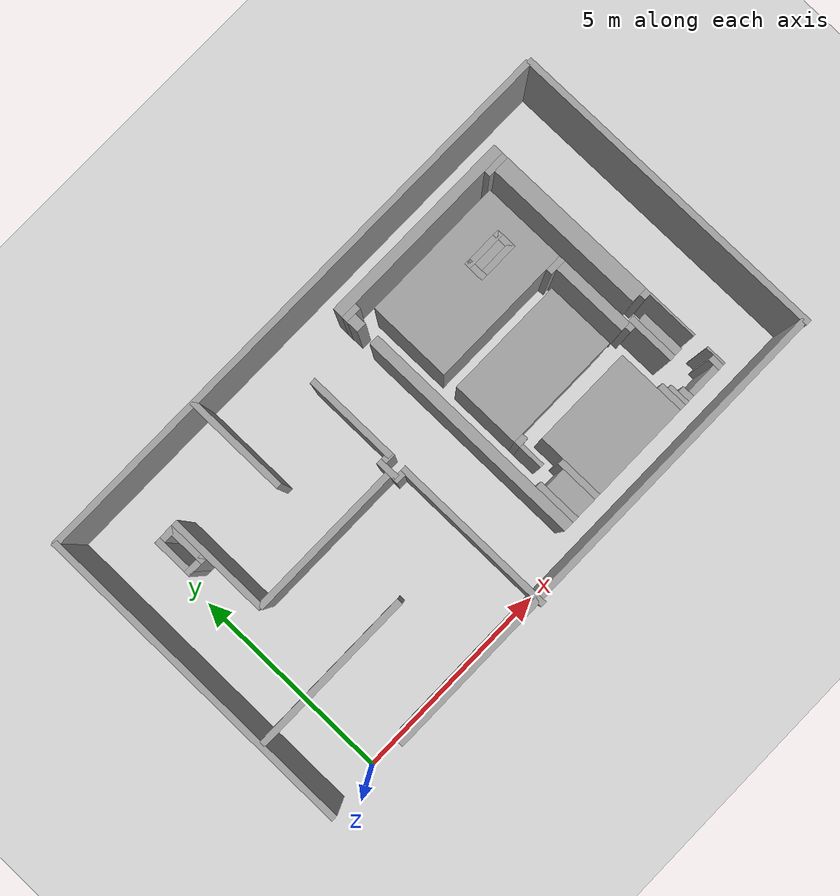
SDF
<sdf version="1.7">
 <world name="default">
  <light name="sun" type="directional">
   <pose>0 0 10 0 -0 0</pose>
   <diffuse>0.8 0.8 0.8 1</diffuse>
   <specular>0.2 0.2 0.2 1</specular>
   <attenuation>
    <range>1000</range>
    <constant>0.9</constant>
    <linear>0.01</linear>
    <quadratic>0.001</quadratic>
   </attenuation>
   <direction>-0.5 0.1 -0.9</direction>
   <spot><inner_angle>0</inner_angle><outer_angle>0</outer_angle><falloff>0</falloff></spot>
  </light>
  <model name="ground_plane">
   <static>1</static>
   <link name="link">
    <collision name="collision">
     <geometry><plane><normal>0 0 1</normal><size>100 100</size></plane></geometry>
     <surface>
      <contact><collide_bitmask>65535</collide_bitmask></contact>
      <friction><ode><mu>100</mu><mu2>50</mu2></ode></friction>
     </surface>
    </collision>
    <visual name="visual">
     <cast_shadows>0</cast_shadows>
     <geometry><plane><normal>0 0 1</normal><size>100 100</size></plane></geometry>
     <material>
      <script><uri>file://media/materials/scripts/gazebo.material</uri><name>Gazebo/Grey</name></script>
     </material>
    </visual>
   </link>
  </model>
  <gravity>0 0 -9.8</gravity>
  <magnetic_field>6e-06 2.3e-05 -4.2e-05</magnetic_field>
  <atmosphere type="adiabatic"/>
  <physics type="ode">
   <max_step_size>0.001</max_step_size>
   <real_time_factor>1</real_time_factor>
   <real_time_update_rate>1000</real_time_update_rate>
  </physics>
  <scene><ambient>0.4 0.4 0.4 1</ambient><background>0.7 0.7 0.7 1</background><shadows>1</shadows></scene>
  <spherical_coordinates>
   <surface_model>EARTH_WGS84</surface_model>
   <latitude_deg>0</latitude_deg>
   <longitude_deg>0</longitude_deg>
   <elevation>0</elevation>
   <heading_deg>0</heading_deg>
  </spherical_coordinates>
  <model name="myroom_long_start">
   <pose>6.00346 4.01651 0 0 -0 0</pose>
   <link name="Wall_0">
    <collision name="Wall_0_Collision">
     <geometry><box><size>12 0.15 2.5</size></box></geometry>
     <pose>0 0 1.25 0 -0 0</pose>
    </collision>
    <visual name="Wall_0_Visual">
     <pose>0 0 1.25 0 -0 0</pose>
     <geometry><box><size>12 0.15 2.5</size></box></geometry>
     <material>
      <script><uri>file://media/materials/scripts/gazebo.material</uri><name>Gazebo/Grey</name></script>
      <ambient>1 1 1 1</ambient>
     </material>
     <meta><layer>0</layer></meta>
    </visual>
    <pose>0.977061 -3.98139 0 0 -0 0</pose>
   </link>
   <link name="Wall_10">
    <collision name="Wall_10_Collision">
     <geometry><box><size>4 0.15 2.5</size></box></geometry>
     <pose>0 0 1.25 0 -0 0</pose>
    </collision>
    <visual name="Wall_10_Visual">
     <pose>0 0 1.25 0 -0 0</pose>
     <geometry><box><size>4 0.15 2.5</size></box></geometry>
     <material>
      <script><uri>file://media/materials/scripts/gazebo.material</uri><name>Gazebo/Grey</name></script>
      <ambient>1 1 1 1</ambient>
     </material>
     <meta><layer>0</layer></meta>
    </visual>
    <pose>-4.95933 -1.98457 0 0 -0 0</pose>
   </link>
   <link name="Wall_12">
    <collision name="Wall_12_Collision">
     <geometry><box><size>4 0.15 2.5</size></box></geometry>
     <pose>0 0 1.25 0 -0 0</pose>
    </collision>
    <visual name="Wall_12_Visual">
     <pose>0 0 1.25 0 -0 0</pose>
     <geometry><box><size>4 0.15 2.5</size></box></geometry>
     <material>
      <script><uri>file://media/materials/scripts/gazebo.material</uri><name>Gazebo/Grey</name></script>
      <ambient>1 1 1 1</ambient>
     </material>
     <meta><layer>0</layer></meta>
    </visual>
    <pose>-0.973865 -2.13486 0 0 -0 -1.5708</pose>
   </link>
   <link name="Wall_16">
    <collision name="Wall_16_Collision">
     <geometry><box><size>2.5 0.15 2.5</size></box></geometry>
     <pose>0 0 1.25 0 -0 0</pose>
    </collision>
    <visual name="Wall_16_Visual">
     <pose>0 0 1.25 0 -0 0</pose>
     <geometry><box><size>2.5 0.15 2.5</size></box></geometry>
     <material>
      <script><uri>file://media/materials/scripts/gazebo.material</uri><name>Gazebo/Grey</name></script>
      <ambient>1 1 1 1</ambient>
     </material>
     <meta><layer>0</layer></meta>
    </visual>
    <pose>-5.00955 1.19594 0 0 -0 -1.5708</pose>
   </link>
   <link name="Wall_2">
    <collision name="Wall_2_Collision">
     <geometry><box><size>8 0.15 2.5</size></box></geometry>
     <pose>0 0 1.25 0 -0 0</pose>
    </collision>
    <visual name="Wall_2_Visual">
     <pose>0 0 1.25 0 -0 0</pose>
     <geometry><box><size>8 0.15 2.5</size></box></geometry>
     <material>
      <script><uri>file://media/materials/scripts/gazebo.material</uri><name>Gazebo/Grey</name></script>
      <ambient>1 1 1 1</ambient>
     </material>
     <meta><layer>0</layer></meta>
    </visual>
    <pose>-6.99952 -0.062096 0 0 -0 -1.5708</pose>
   </link>
   <link name="Wall_20">
    <collision name="Wall_20_Collision">
     <geometry><box><size>2.5 0.15 2.5</size></box></geometry>
     <pose>0 0 1.25 0 -0 0</pose>
    </collision>
    <visual name="Wall_20_Visual">
     <pose>0 0 1.25 0 -0 0</pose>
     <geometry><box><size>2.5 0.15 2.5</size></box></geometry>
     <material>
      <script><uri>file://media/materials/scripts/gazebo.material</uri><name>Gazebo/Grey</name></script>
      <ambient>1 1 1 1</ambient>
     </material>
     <meta><layer>0</layer></meta>
    </visual>
    <pose>-2.98955 2.67594 0 0 -0 -1.5708</pose>
   </link>
   <link name="Wall_24">
    <collision name="Wall_24_Collision">
     <geometry><box><size>3.75 0.15 2.5</size></box></geometry>
     <pose>0 0 1.25 0 -0 0</pose>
    </collision>
    <visual name="Wall_24_Visual">
     <pose>0 0 1.25 0 -0 0</pose>
     <geometry><box><size>3.75 0.15 2.5</size></box></geometry>
     <material>
      <script><uri>file://media/materials/scripts/gazebo.material</uri><name>Gazebo/Grey</name></script>
      <ambient>1 1 1 1</ambient>
     </material>
     <meta><layer>0</layer></meta>
    </visual>
    <pose>-3.15343 -0.018496 0 0 -0 0</pose>
   </link>
   <link name="Wall_28">
    <collision name="Wall_28_Collision">
     <geometry><box><size>2.25 0.15 2.5</size></box></geometry>
     <pose>0 0 1.25 0 -0 0</pose>
    </collision>
    <visual name="Wall_28_Visual">
     <pose>0 0 1.25 0 -0 0</pose>
     <geometry><box><size>2.25 0.15 2.5</size></box></geometry>
     <material>
      <script><uri>file://media/materials/scripts/gazebo.material</uri><name>Gazebo/Grey</name></script>
      <ambient>1 1 1 1</ambient>
     </material>
     <meta><layer>0</layer></meta>
    </visual>
    <pose>-0.964656 1.33168 0 0 -0 -1.5708</pose>
   </link>
   <link name="Wall_32">
    <collision name="Wall_32_Collision">
     <geometry><box><size>0.25 0.15 2.5</size></box></geometry>
     <pose>0 0 1.25 0 -0 0</pose>
    </collision>
    <visual name="Wall_32_Visual">
     <pose>0 0 1.25 0 -0 0</pose>
     <geometry><box><size>0.25 0.15 2.5</size></box></geometry>
     <material>
      <script><uri>file://media/materials/scripts/gazebo.material</uri><name>Gazebo/Grey</name></script>
      <ambient>1 1 1 1</ambient>
     </material>
     <meta><layer>0</layer></meta>
    </visual>
    <pose>-1.15449 -0.210647 0 0 -0 0</pose>
   </link>
   <link name="Wall_34">
    <collision name="Wall_34_Collision">
     <geometry><box><size>0.5 0.15 2.5</size></box></geometry>
     <pose>0 0 1.25 0 -0 0</pose>
    </collision>
    <visual name="Wall_34_Visual">
     <pose>0 0 1.25 0 -0 0</pose>
     <geometry><box><size>0.5 0.15 2.5</size></box></geometry>
     <material>
      <script><uri>file://media/materials/scripts/gazebo.material</uri><name>Gazebo/Grey</name></script>
      <ambient>1 1 1 1</ambient>
     </material>
     <meta><layer>0</layer></meta>
    </visual>
    <pose>-1.20471 0.066247 0 0 -0 -1.5708</pose>
   </link>
   <link name="Wall_36">
    <collision name="Wall_36_Collision">
     <geometry><box><size>0.25 0.15 2.5</size></box></geometry>
     <pose>0 0 1.25 0 -0 0</pose>
    </collision>
    <visual name="Wall_36_Visual">
     <pose>0 0 1.25 0 -0 0</pose>
     <geometry><box><size>0.25 0.15 2.5</size></box></geometry>
     <material>
      <script><uri>file://media/materials/scripts/gazebo.material</uri><name>Gazebo/Grey</name></script>
      <ambient>1 1 1 1</ambient>
     </material>
     <meta><layer>0</layer></meta>
    </visual>
    <pose>-1.01476 0.240944 0 0 -0 0</pose>
   </link>
   <link name="Wall_4">
    <collision name="Wall_4_Collision">
     <geometry><box><size>14 0.15 2.5</size></box></geometry>
     <pose>0 0 1.25 0 -0 0</pose>
    </collision>
    <visual name="Wall_4_Visual">
     <pose>0 0 1.25 0 -0 0</pose>
     <geometry><box><size>14 0.15 2.5</size></box></geometry>
     <material>
      <script><uri>file://media/materials/scripts/gazebo.material</uri><name>Gazebo/Grey</name></script>
      <ambient>1 1 1 1</ambient>
     </material>
     <meta><layer>0</layer></meta>
    </visual>
    <pose>-0.026045 3.88302 0 0 -0 3.14159</pose>
   </link>
   <link name="Wall_6">
    <collision name="Wall_6_Collision">
     <geometry><box><size>8 0.15 2.5</size></box></geometry>
     <pose>0 0 1.25 0 -0 0</pose>
    </collision>
    <visual name="Wall_6_Visual">
     <pose>0 0 1.25 0 -0 0</pose>
     <geometry><box><size>8 0.15 2.5</size></box></geometry>
     <material>
      <script><uri>file://media/materials/scripts/gazebo.material</uri><name>Gazebo/Grey</name></script>
      <ambient>1 1 1 1</ambient>
     </material>
     <meta><layer>0</layer></meta>
    </visual>
    <pose>6.99952 -0.08221 0 0 -0 -1.5708</pose>
   </link>
   <static>1</static>
  </model>
  <model name="half_wall">
   <pose>0.67196 6.91648 0 0 -0 0</pose>
   <link name="Wall_0">
    <collision name="Wall_0_Collision">
     <geometry><box><size>1 0.15 2.5</size></box></geometry>
     <pose>0 0 1.25 0 -0 0</pose>
    </collision>
    <visual name="Wall_0_Visual">
     <pose>0 0 1.25 0 -0 0</pose>
     <geometry><box><size>1 0.15 2.5</size></box></geometry>
     <material>
      <script><uri>file://media/materials/scripts/gazebo.material</uri><name>Gazebo/Grey</name></script>
      <ambient>1 1 1 1</ambient>
     </material>
     <meta><layer>0</layer></meta>
    </visual>
    <pose>-0.175 -0.9541 0 0 -0 1.5708</pose>
   </link>
   <link name="Wall_1">
    <collision name="Wall_1_Collision">
     <geometry><box><size>0.5 0.15 2.5</size></box></geometry>
     <pose>0 0 1.25 0 -0 0</pose>
    </collision>
    <visual name="Wall_1_Visual">
     <pose>0 0 1.25 0 -0 0</pose>
     <geometry><box><size>0.5 0.15 2.5</size></box></geometry>
     <material>
      <script><uri>file://media/materials/scripts/gazebo.material</uri><name>Gazebo/Grey</name></script>
      <ambient>1 1 1 1</ambient>
     </material>
     <meta><layer>0</layer></meta>
    </visual>
    <pose>0 -0.5291 0 0 -0 0</pose>
   </link>
   <link name="Wall_2">
    <collision name="Wall_2_Collision">
     <geometry><box><size>1 0.15 2.5</size></box></geometry>
     <pose>0 0 1.25 0 -0 0</pose>
    </collision>
    <visual name="Wall_2_Visual">
     <pose>0 0 1.25 0 -0 0</pose>
     <geometry><box><size>1 0.15 2.5</size></box></geometry>
     <material>
      <script><uri>file://media/materials/scripts/gazebo.material</uri><name>Gazebo/Grey</name></script>
      <ambient>1 1 1 1</ambient>
     </material>
     <meta><layer>0</layer></meta>
    </visual>
    <pose>0.175 -0.9541 0 0 -0 -1.5708</pose>
   </link>
   <link name="Wall_3">
    <collision name="Wall_3_Collision">
     <geometry><box><size>0.5 0.15 2.5</size></box></geometry>
     <pose>0 0 1.25 0 -0 0</pose>
    </collision>
    <visual name="Wall_3_Visual">
     <pose>0 0 1.25 0 -0 0</pose>
     <geometry><box><size>0.5 0.15 2.5</size></box></geometry>
     <material>
      <script><uri>file://media/materials/scripts/gazebo.material</uri><name>Gazebo/Grey</name></script>
      <ambient>1 1 1 1</ambient>
     </material>
     <meta><layer>0</layer></meta>
    </visual>
    <pose>0 -1.3791 0 0 -0 3.14159</pose>
   </link>
   <static>1</static>
  </model>
  <model name="half_wall_0">
   <pose>8.50621 5.64751 0 0 -0 1.57113</pose>
   <link name="Wall_0">
    <collision name="Wall_0_Collision">
     <geometry><box><size>1 0.15 2.5</size></box></geometry>
     <pose>0 0 1.25 0 -0 0</pose>
    </collision>
    <visual name="Wall_0_Visual">
     <pose>0 0 1.25 0 -0 0</pose>
     <geometry><box><size>1 0.15 2.5</size></box></geometry>
     <material>
      <script><uri>file://media/materials/scripts/gazebo.material</uri><name>Gazebo/Grey</name></script>
      <ambient>1 1 1 1</ambient>
     </material>
     <meta><layer>0</layer></meta>
    </visual>
    <pose>-0.175 -0.9541 0 0 -0 1.5708</pose>
   </link>
   <link name="Wall_1">
    <collision name="Wall_1_Collision">
     <geometry><box><size>0.5 0.15 2.5</size></box></geometry>
     <pose>0 0 1.25 0 -0 0</pose>
    </collision>
    <visual name="Wall_1_Visual">
     <pose>0 0 1.25 0 -0 0</pose>
     <geometry><box><size>0.5 0.15 2.5</size></box></geometry>
     <material>
      <script><uri>file://media/materials/scripts/gazebo.material</uri><name>Gazebo/Grey</name></script>
      <ambient>1 1 1 1</ambient>
     </material>
     <meta><layer>0</layer></meta>
    </visual>
    <pose>0 -0.5291 0 0 -0 0</pose>
   </link>
   <link name="Wall_2">
    <collision name="Wall_2_Collision">
     <geometry><box><size>1 0.15 2.5</size></box></geometry>
     <pose>0 0 1.25 0 -0 0</pose>
    </collision>
    <visual name="Wall_2_Visual">
     <pose>0 0 1.25 0 -0 0</pose>
     <geometry><box><size>1 0.15 2.5</size></box></geometry>
     <material>
      <script><uri>file://media/materials/scripts/gazebo.material</uri><name>Gazebo/Grey</name></script>
      <ambient>1 1 1 1</ambient>
     </material>
     <meta><layer>0</layer></meta>
    </visual>
    <pose>0.175 -0.9541 0 0 -0 -1.5708</pose>
   </link>
   <link name="Wall_3">
    <collision name="Wall_3_Collision">
     <geometry><box><size>0.5 0.15 2.5</size></box></geometry>
     <pose>0 0 1.25 0 -0 0</pose>
    </collision>
    <visual name="Wall_3_Visual">
     <pose>0 0 1.25 0 -0 0</pose>
     <geometry><box><size>0.5 0.15 2.5</size></box></geometry>
     <material>
      <script><uri>file://media/materials/scripts/gazebo.material</uri><name>Gazebo/Grey</name></script>
      <ambient>1 1 1 1</ambient>
     </material>
     <meta><layer>0</layer></meta>
    </visual>
    <pose>0 -1.3791 0 0 -0 3.14159</pose>
   </link>
   <static>1</static>
  </model>
  <model name="inroom_branch_wall_0">
   <static>1</static>
   <pose>8.800 7.075 1.250 0 0 0</pose>
   <link name="link">
    <collision name="collision"><geometry><box><size>4.800 0.250 2.50</size></box></geometry></collision>
    <visual name="visual">
     <geometry><box><size>4.800 0.250 2.50</size></box></geometry>
     <material>
      <script><uri>file://media/materials/scripts/gazebo.material</uri><name>Gazebo/Grey</name></script>
     </material>
    </visual>
   </link>
  </model>
  <model name="inroom_branch_wall_1">
   <static>1</static>
   <pose>6.600 6.875 1.250 0 0 0</pose>
   <link name="link">
    <collision name="collision"><geometry><box><size>0.400 0.150 2.50</size></box></geometry></collision>
    <visual name="visual">
     <geometry><box><size>0.400 0.150 2.50</size></box></geometry>
     <material>
      <script><uri>file://media/materials/scripts/gazebo.material</uri><name>Gazebo/Grey</name></script>
     </material>
    </visual>
   </link>
  </model>
  <model name="inroom_branch_wall_2">
   <static>1</static>
   <pose>10.925 6.875 1.250 0 0 0</pose>
   <link name="link">
    <collision name="collision"><geometry><box><size>0.550 0.150 2.50</size></box></geometry></collision>
    <visual name="visual">
     <geometry><box><size>0.550 0.150 2.50</size></box></geometry>
     <material>
      <script><uri>file://media/materials/scripts/gazebo.material</uri><name>Gazebo/Grey</name></script>
     </material>
    </visual>
   </link>
  </model>
  <model name="inroom_branch_wall_3">
   <static>1</static>
   <pose>6.525 6.650 1.250 0 0 0</pose>
   <link name="link">
    <collision name="collision"><geometry><box><size>0.250 0.300 2.50</size></box></geometry></collision>
    <visual name="visual">
     <geometry><box><size>0.250 0.300 2.50</size></box></geometry>
     <material>
      <script><uri>file://media/materials/scripts/gazebo.material</uri><name>Gazebo/Grey</name></script>
     </material>
    </visual>
   </link>
  </model>
  <model name="inroom_branch_wall_4">
   <static>1</static>
   <pose>11.000 4.825 1.250 0 0 0</pose>
   <link name="link">
    <collision name="collision"><geometry><box><size>0.400 3.950 2.50</size></box></geometry></collision>
    <visual name="visual">
     <geometry><box><size>0.400 3.950 2.50</size></box></geometry>
     <material>
      <script><uri>file://media/materials/scripts/gazebo.material</uri><name>Gazebo/Grey</name></script>
     </material>
    </visual>
   </link>
  </model>
  <model name="inroom_branch_wall_5">
   <static>1</static>
   <pose>8.725 5.600 1.250 0 0 0</pose>
   <link name="link">
    <collision name="collision"><geometry><box><size>3.450 2.000 2.50</size></box></geometry></collision>
    <visual name="visual">
     <geometry><box><size>3.450 2.000 2.50</size></box></geometry>
     <material>
      <script><uri>file://media/materials/scripts/gazebo.material</uri><name>Gazebo/Grey</name></script>
     </material>
    </visual>
   </link>
  </model>
  <model name="inroom_branch_wall_6">
   <static>1</static>
   <pose>6.525 3.375 1.250 0 0 0</pose>
   <link name="link">
    <collision name="collision"><geometry><box><size>0.250 5.550 2.50</size></box></geometry></collision>
    <visual name="visual">
     <geometry><box><size>0.250 5.550 2.50</size></box></geometry>
     <material>
      <script><uri>file://media/materials/scripts/gazebo.material</uri><name>Gazebo/Grey</name></script>
     </material>
    </visual>
   </link>
  </model>
  <model name="inroom_branch_wall_7">
   <static>1</static>
   <pose>10.250 4.525 1.250 0 0 0</pose>
   <link name="link">
    <collision name="collision"><geometry><box><size>0.400 0.150 2.50</size></box></geometry></collision>
    <visual name="visual">
     <geometry><box><size>0.400 0.150 2.50</size></box></geometry>
     <material>
      <script><uri>file://media/materials/scripts/gazebo.material</uri><name>Gazebo/Grey</name></script>
     </material>
    </visual>
   </link>
  </model>
  <model name="inroom_branch_wall_8">
   <static>1</static>
   <pose>10.325 3.525 1.250 0 0 0</pose>
   <link name="link">
    <collision name="collision"><geometry><box><size>0.250 1.850 2.50</size></box></geometry></collision>
    <visual name="visual">
     <geometry><box><size>0.250 1.850 2.50</size></box></geometry>
     <material>
      <script><uri>file://media/materials/scripts/gazebo.material</uri><name>Gazebo/Grey</name></script>
     </material>
    </visual>
   </link>
  </model>
  <model name="inroom_branch_wall_9">
   <static>1</static>
   <pose>8.425 3.425 1.250 0 0 0</pose>
   <link name="link">
    <collision name="collision"><geometry><box><size>2.850 1.650 2.50</size></box></geometry></collision>
    <visual name="visual">
     <geometry><box><size>2.850 1.650 2.50</size></box></geometry>
     <material>
      <script><uri>file://media/materials/scripts/gazebo.material</uri><name>Gazebo/Grey</name></script>
     </material>
    </visual>
   </link>
  </model>
  <model name="inroom_branch_wall_10">
   <static>1</static>
   <pose>11.100 2.775 1.250 0 0 0</pose>
   <link name="link">
    <collision name="collision"><geometry><box><size>0.200 0.150 2.50</size></box></geometry></collision>
    <visual name="visual">
     <geometry><box><size>0.200 0.150 2.50</size></box></geometry>
     <material>
      <script><uri>file://media/materials/scripts/gazebo.material</uri><name>Gazebo/Grey</name></script>
     </material>
    </visual>
   </link>
  </model>
  <model name="inroom_branch_wall_11">
   <static>1</static>
   <pose>11.175 2.075 1.250 0 0 0</pose>
   <link name="link">
    <collision name="collision"><geometry><box><size>0.050 1.250 2.50</size></box></geometry></collision>
    <visual name="visual">
     <geometry><box><size>0.050 1.250 2.50</size></box></geometry>
     <material>
      <script><uri>file://media/materials/scripts/gazebo.material</uri><name>Gazebo/Grey</name></script>
     </material>
    </visual>
   </link>
  </model>
  <model name="inroom_branch_wall_12">
   <static>1</static>
   <pose>10.525 2.050 1.250 0 0 0</pose>
   <link name="link">
    <collision name="collision"><geometry><box><size>0.150 1.200 2.50</size></box></geometry></collision>
    <visual name="visual">
     <geometry><box><size>0.150 1.200 2.50</size></box></geometry>
     <material>
      <script><uri>file://media/materials/scripts/gazebo.material</uri><name>Gazebo/Grey</name></script>
     </material>
    </visual>
   </link>
  </model>
  <model name="inroom_branch_wall_13">
   <static>1</static>
   <pose>7.125 2.525 1.250 0 0 0</pose>
   <link name="link">
    <collision name="collision"><geometry><box><size>0.250 0.150 2.50</size></box></geometry></collision>
    <visual name="visual">
     <geometry><box><size>0.250 0.150 2.50</size></box></geometry>
     <material>
      <script><uri>file://media/materials/scripts/gazebo.material</uri><name>Gazebo/Grey</name></script>
     </material>
    </visual>
   </link>
  </model>
  <model name="inroom_branch_wall_14">
   <static>1</static>
   <pose>10.375 2.525 1.250 0 0 0</pose>
   <link name="link">
    <collision name="collision"><geometry><box><size>0.150 0.150 2.50</size></box></geometry></collision>
    <visual name="visual">
     <geometry><box><size>0.150 0.150 2.50</size></box></geometry>
     <material>
      <script><uri>file://media/materials/scripts/gazebo.material</uri><name>Gazebo/Grey</name></script>
     </material>
    </visual>
   </link>
  </model>
  <model name="inroom_branch_wall_15">
   <static>1</static>
   <pose>10.700 1.975 1.250 0 0 0</pose>
   <link name="link">
    <collision name="collision"><geometry><box><size>0.200 1.050 2.50</size></box></geometry></collision>
    <visual name="visual">
     <geometry><box><size>0.200 1.050 2.50</size></box></geometry>
     <material>
      <script><uri>file://media/materials/scripts/gazebo.material</uri><name>Gazebo/Grey</name></script>
     </material>
    </visual>
   </link>
  </model>
  <model name="inroom_branch_wall_16">
   <static>1</static>
   <pose>7.050 2.150 1.250 0 0 0</pose>
   <link name="link">
    <collision name="collision"><geometry><box><size>0.100 0.600 2.50</size></box></geometry></collision>
    <visual name="visual">
     <geometry><box><size>0.100 0.600 2.50</size></box></geometry>
     <material>
      <script><uri>file://media/materials/scripts/gazebo.material</uri><name>Gazebo/Grey</name></script>
     </material>
    </visual>
   </link>
  </model>
  <model name="inroom_branch_wall_17">
   <static>1</static>
   <pose>8.650 1.425 1.250 0 0 0</pose>
   <link name="link">
    <collision name="collision"><geometry><box><size>2.400 1.650 2.50</size></box></geometry></collision>
    <visual name="visual">
     <geometry><box><size>2.400 1.650 2.50</size></box></geometry>
     <material>
      <script><uri>file://media/materials/scripts/gazebo.material</uri><name>Gazebo/Grey</name></script>
     </material>
    </visual>
   </link>
  </model>
  <model name="inroom_branch_wall_18">
   <static>1</static>
   <pose>6.725 1.125 1.250 0 0 0</pose>
   <link name="link">
    <collision name="collision"><geometry><box><size>0.150 1.050 2.50</size></box></geometry></collision>
    <visual name="visual">
     <geometry><box><size>0.150 1.050 2.50</size></box></geometry>
     <material>
      <script><uri>file://media/materials/scripts/gazebo.material</uri><name>Gazebo/Grey</name></script>
     </material>
    </visual>
   </link>
  </model>
  <model name="inroom_branch_wall_19">
   <static>1</static>
   <pose>7.375 1.125 1.250 0 0 0</pose>
   <link name="link">
    <collision name="collision"><geometry><box><size>0.150 1.050 2.50</size></box></geometry></collision>
    <visual name="visual">
     <geometry><box><size>0.150 1.050 2.50</size></box></geometry>
     <material>
      <script><uri>file://media/materials/scripts/gazebo.material</uri><name>Gazebo/Grey</name></script>
     </material>
    </visual>
   </link>
  </model>
  <model name="inroom_branch_wall_20">
   <static>1</static>
   <pose>7.050 1.050 1.250 0 0 0</pose>
   <link name="link">
    <collision name="collision"><geometry><box><size>0.500 0.900 2.50</size></box></geometry></collision>
    <visual name="visual">
     <geometry><box><size>0.500 0.900 2.50</size></box></geometry>
     <material>
      <script><uri>file://media/materials/scripts/gazebo.material</uri><name>Gazebo/Grey</name></script>
     </material>
    </visual>
   </link>
  </model>
  <model name="inroom_branch_wall_21">
   <static>1</static>
   <pose>9.925 0.925 1.250 0 0 0</pose>
   <link name="link">
    <collision name="collision"><geometry><box><size>0.150 0.650 2.50</size></box></geometry></collision>
    <visual name="visual">
     <geometry><box><size>0.150 0.650 2.50</size></box></geometry>
     <material>
      <script><uri>file://media/materials/scripts/gazebo.material</uri><name>Gazebo/Grey</name></script>
     </material>
    </visual>
   </link>
  </model>
  <model name="inroom_branch_wall_22">
   <static>1</static>
   <pose>10.050 0.850 1.250 0 0 0</pose>
   <link name="link">
    <collision name="collision"><geometry><box><size>0.100 0.500 2.50</size></box></geometry></collision>
    <visual name="visual">
     <geometry><box><size>0.100 0.500 2.50</size></box></geometry>
     <material>
      <script><uri>file://media/materials/scripts/gazebo.material</uri><name>Gazebo/Grey</name></script>
     </material>
    </visual>
   </link>
  </model>
  <model name="inroom_branch_wall_23">
   <static>1</static>
   <pose>11.175 0.850 1.250 0 0 0</pose>
   <link name="link">
    <collision name="collision"><geometry><box><size>0.050 0.500 2.50</size></box></geometry></collision>
    <visual name="visual">
     <geometry><box><size>0.050 0.500 2.50</size></box></geometry>
     <material>
      <script><uri>file://media/materials/scripts/gazebo.material</uri><name>Gazebo/Grey</name></script>
     </material>
    </visual>
   </link>
  </model>
  <model name="inroom_branch_wall_24">
   <static>1</static>
   <pose>10.175 0.750 1.250 0 0 0</pose>
   <link name="link">
    <collision name="collision"><geometry><box><size>0.150 0.300 2.50</size></box></geometry></collision>
    <visual name="visual">
     <geometry><box><size>0.150 0.300 2.50</size></box></geometry>
     <material>
      <script><uri>file://media/materials/scripts/gazebo.material</uri><name>Gazebo/Grey</name></script>
     </material>
    </visual>
   </link>
  </model>
  <model name="inroom_branch_wall_25">
   <static>1</static>
   <pose>11.075 0.750 1.250 0 0 0</pose>
   <link name="link">
    <collision name="collision"><geometry><box><size>0.150 0.300 2.50</size></box></geometry></collision>
    <visual name="visual">
     <geometry><box><size>0.150 0.300 2.50</size></box></geometry>
     <material>
      <script><uri>file://media/materials/scripts/gazebo.material</uri><name>Gazebo/Grey</name></script>
     </material>
    </visual>
   </link>
  </model>
  <model name="inroom_branch_wall_26">
   <static>1</static>
   <pose>10.625 0.675 1.250 0 0 0</pose>
   <link name="link">
    <collision name="collision"><geometry><box><size>0.750 0.150 2.50</size></box></geometry></collision>
    <visual name="visual">
     <geometry><box><size>0.750 0.150 2.50</size></box></geometry>
     <material>
      <script><uri>file://media/materials/scripts/gazebo.material</uri><name>Gazebo/Grey</name></script>
     </material>
    </visual>
   </link>
  </model>
 </world>
</sdf>
